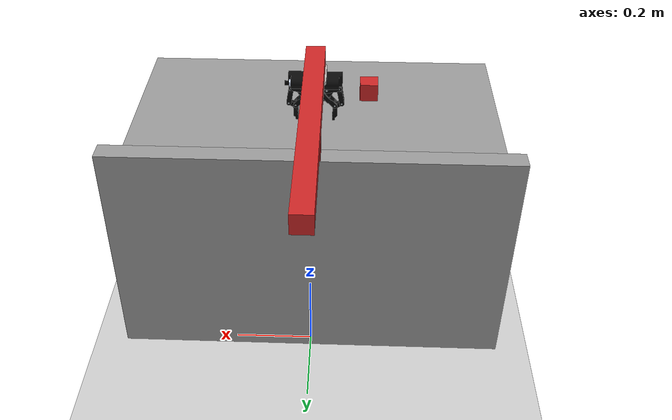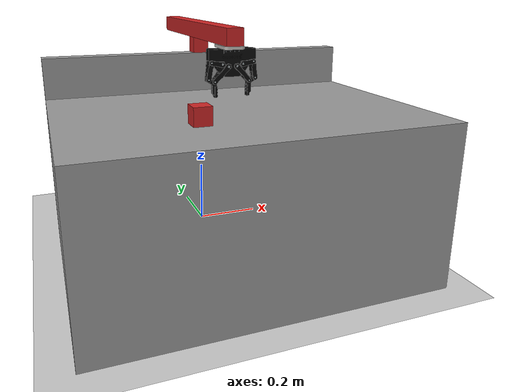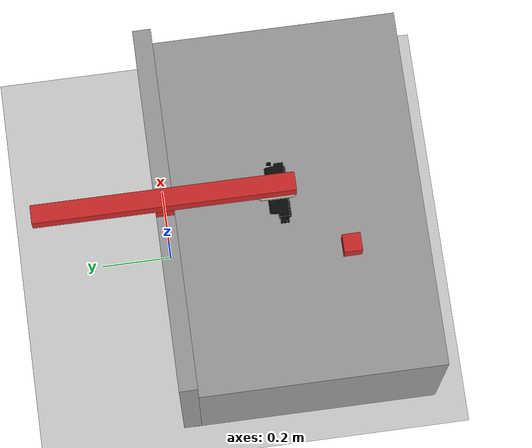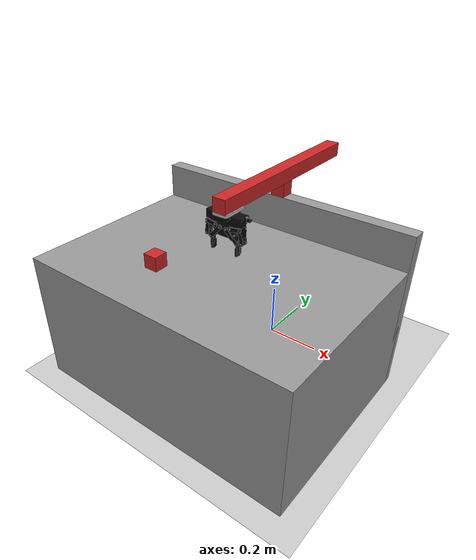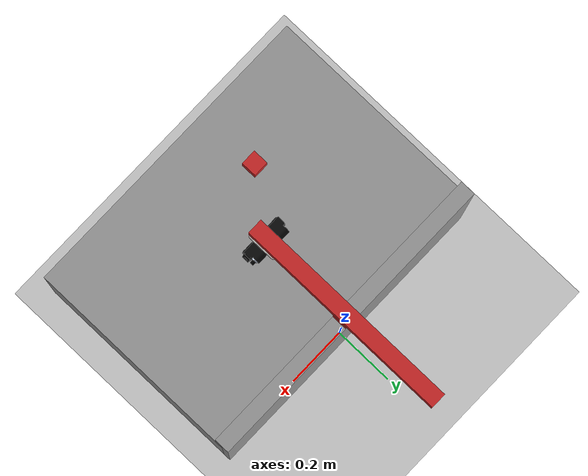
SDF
<sdf version="1.6">
 <world name="default">
  <light name="sun" type="directional">
   <pose>0 0 10 0 -0 0</pose>
   <diffuse>0.8 0.8 0.8 1</diffuse>
   <specular>0.2 0.2 0.2 1</specular>
   <attenuation>
    <range>1000</range>
    <constant>0.9</constant>
    <linear>0.01</linear>
    <quadratic>0.001</quadratic>
   </attenuation>
   <direction>-0.5 0.1 -0.9</direction>
  </light>
  <model name="ground_plane">
   <static>1</static>
   <link name="link">
    <collision name="collision">
     <geometry><plane><normal>0 0 1</normal><size>100 100</size></plane></geometry>
     <surface>
      <contact><collide_bitmask>65535</collide_bitmask></contact>
      <friction><ode><mu>100</mu><mu2>50</mu2></ode></friction>
     </surface>
    </collision>
    <visual name="visual">
     <cast_shadows>0</cast_shadows>
     <geometry><plane><normal>0 0 1</normal><size>100 100</size></plane></geometry>
     <material>
      <script><uri>file://media/materials/scripts/gazebo.material</uri><name>Gazebo/Grey</name></script>
     </material>
    </visual>
   </link>
  </model>
  <gravity>0 0 -9.8</gravity>
  <magnetic_field>6e-06 2.3e-05 -4.2e-05</magnetic_field>
  <atmosphere type="adiabatic"/>
  <physics name="default_physics" default="0" type="ode">
   <max_step_size>0.001</max_step_size>
   <real_time_factor>1</real_time_factor>
   <real_time_update_rate>1000</real_time_update_rate>
  </physics>
  <scene><ambient>0.4 0.4 0.4 1</ambient><background>0.7 0.7 0.7 1</background><shadows>1</shadows></scene>
  <audio><device>default</device></audio>
  <spherical_coordinates>
   <surface_model>EARTH_WGS84</surface_model>
   <latitude_deg>0</latitude_deg>
   <longitude_deg>0</longitude_deg>
   <elevation>0</elevation>
   <heading_deg>0</heading_deg>
  </spherical_coordinates>
  <model name="robotiq_c2_model">
   <link name="box">
    <pose>0 0 0.3 0 -0 0</pose>
    <inertial>
     <mass>1</mass>
     <inertia><ixx>1</ixx><ixy>0</ixy><ixz>0</ixz><iyy>1</iyy><iyz>0</iyz><izz>1</izz></inertia>
    </inertial>
    <collision name="box_collision">
     <geometry><box><size>1 0.05 0.6</size></box></geometry>
     <surface>
      <contact><ode><kp>1e+06</kp><kd>1</kd></ode></contact>
      <friction><ode><mu>50</mu><mu2>50</mu2></ode></friction>
     </surface>
    </collision>
    <visual name="box_visual">
     <geometry><box><size>1 0.05 0.6</size></box></geometry>
     <material>
      <script><name>Gazebo/Grey</name><uri>file://media/materials/scripts/gazebo.material</uri></script>
     </material>
    </visual>
   </link>
   <joint name="rh_world_joint" type="fixed"><child>box</child><parent>world</parent></joint>
   <link name="arm_base_link">
    <pose>0 0 0.625 0 -0 0</pose>
    <inertial>
     <mass>1</mass>
     <inertia><ixx>1</ixx><ixy>0</ixy><ixz>0</ixz><iyy>1</iyy><iyz>0</iyz><izz>1</izz></inertia>
    </inertial>
    <collision name="arm_base_link_collision">
     <geometry><box><size>0.05 0.05 0.05</size></box></geometry>
     <surface>
      <contact><ode><kp>1e+06</kp><kd>1</kd></ode></contact>
      <friction><ode><mu>50</mu><mu2>50</mu2></ode></friction>
     </surface>
    </collision>
    <visual name="arm_base_link_visual">
     <geometry><box><size>0.05 0.05 0.05</size></box></geometry>
     <material>
      <script><name>Gazebo/Red</name><uri>file://media/materials/scripts/gazebo.material</uri></script>
     </material>
    </visual>
   </link>
   <joint name="arm_base" type="prismatic">
    <child>arm_base_link</child>
    <parent>box</parent>
    <axis>
     <xyz>1 0 0</xyz>
     <limit><lower>-0.45</lower><upper>0.45</upper><effort>10000</effort><velocity>0.2</velocity></limit>
     <dynamics><spring_reference>0</spring_reference><spring_stiffness>0</spring_stiffness></dynamics>
     <use_parent_model_frame>1</use_parent_model_frame>
    </axis>
   </joint>
   <link name="joint_a1_link">
    <pose>0 0 0.675 0 -0 1.57</pose>
    <inertial>
     <pose>-0.201367 0 -0.0195 0 -0 0</pose>
     <mass>3</mass>
     <inertia>
      <ixx>3.00061</ixx>
      <ixy>0</ixy>
      <ixz>-0.0059074</ixz>
      <iyy>3.06144</iyy>
      <iyz>0</iyz>
      <izz>3.06083</izz>
     </inertia>
    </inertial>
    <collision name="joint_a1_link_collision">
     <geometry><box><size>0.7 0.05 0.05</size></box></geometry>
     <surface>
      <contact><ode><kp>1e+06</kp><kd>1</kd></ode></contact>
      <friction><ode><mu>50</mu><mu2>50</mu2></ode></friction>
     </surface>
    </collision>
    <collision name="joint_a1_link_fixed_joint_lump__robotiq_85_adapter_link_collision_1">
     <pose>-0.3 0 -0.025 1.57 9.6e-05 1.5708</pose>
     <geometry>
      <mesh>
       <scale>1 1 1</scale>
       <uri>/home/katerina/catkin_ws/src/robotiq/robotiq_2f_c2_gripper_visualization/meshes/robotiq_c2/collision/robotiq_85_gripper_adapter_plate.dae</uri>
      </mesh>
     </geometry>
    </collision>
    <collision name="joint_a1_link_fixed_joint_lump__robotiq_85_base_link_collision_2">
     <pose>-0.304093 0 -0.033503 3.1407 9.6e-05 1.5708</pose>
     <geometry>
      <mesh>
       <scale>1 1 1</scale>
       <uri>/home/katerina/catkin_ws/src/robotiq/robotiq_2f_c2_gripper_visualization/meshes/robotiq_c2/collision/robotiq_85_gripper_base.dae</uri>
      </mesh>
     </geometry>
    </collision>
    <visual name="joint_a1_link_visual">
     <geometry><box><size>0.7 0.05 0.05</size></box></geometry>
     <material>
      <script><name>Gazebo/Red</name><uri>file://media/materials/scripts/gazebo.material</uri></script>
     </material>
    </visual>
    <visual name="joint_a1_link_fixed_joint_lump__robotiq_85_adapter_link_visual_1">
     <pose>-0.3 0 -0.025 3.1407 9.6e-05 1.5708</pose>
     <geometry>
      <mesh>
       <scale>1 1 1</scale>
       <uri>/home/katerina/catkin_ws/src/robotiq/robotiq_2f_c2_gripper_visualization/meshes/robotiq_c2/visual/robotiq_85_gripper_adapter_plate.dae</uri>
      </mesh>
     </geometry>
    </visual>
    <visual name="joint_a1_link_fixed_joint_lump__robotiq_85_base_link_visual_2">
     <pose>-0.304093 0 -0.033503 -1.57169 9.6e-05 1.5708</pose>
     <geometry>
      <mesh>
       <scale>1 1 1</scale>
       <uri>/home/katerina/catkin_ws/src/robotiq/robotiq_2f_c2_gripper_visualization/meshes/robotiq_c2/visual/robotiq_85_gripper_base.dae</uri>
      </mesh>
     </geometry>
    </visual>
    <gravity>0</gravity>
   </link>
   <joint name="joint_a1" type="prismatic">
    <child>joint_a1_link</child>
    <parent>arm_base_link</parent>
    <axis>
     <xyz>0.000796 1 0</xyz>
     <limit><lower>-0.35</lower><upper>0.15</upper><effort>10000</effort><velocity>0.2</velocity></limit>
     <dynamics><spring_reference>0</spring_reference><spring_stiffness>0</spring_stiffness></dynamics>
     <use_parent_model_frame>1</use_parent_model_frame>
    </axis>
   </joint>
   <link name="robotiq_85_left_inner_knuckle_link">
    <pose>-0.012942 -0.304044 0.593067 -1.57089 0.000893 -1.57159</pose>
    <inertial>
     <mass>1</mass>
     <inertia><ixx>1</ixx><ixy>0</ixy><ixz>0</ixz><iyy>1</iyy><iyz>0</iyz><izz>1</izz></inertia>
    </inertial>
    <collision name="robotiq_85_left_inner_knuckle_link_collision">
     <pose>0 -0.04843 0.0127 3.14159 1.57079 -1.57079</pose>
     <geometry>
      <mesh>
       <scale>1 1 1</scale>
       <uri>/home/katerina/catkin_ws/src/robotiq/robotiq_2f_c2_gripper_visualization/meshes/robotiq_c2/collision/robotiq_85_gripper_joint_2_L.dae</uri>
      </mesh>
     </geometry>
    </collision>
    <visual name="robotiq_85_left_inner_knuckle_link_visual">
     <pose>0 -0.04843 0.0127 3.14159 1.57079 3.14159</pose>
     <geometry>
      <mesh>
       <scale>1 1 1</scale>
       <uri>/home/katerina/catkin_ws/src/robotiq/robotiq_2f_c2_gripper_visualization/meshes/robotiq_c2/visual/robotiq_85_gripper_joint_2_L.dae</uri>
      </mesh>
     </geometry>
    </visual>
   </link>
   <joint name="robotiq_85_left_inner_knuckle_joint" type="revolute">
    <child>robotiq_85_left_inner_knuckle_link</child>
    <parent>joint_a1_link</parent>
    <axis>
     <xyz>-0.000796 -0.999999 -0.000893</xyz>
     <limit><lower>0</lower><upper>1.5707</upper><effort>1000</effort><velocity>2</velocity></limit>
     <dynamics><spring_reference>0</spring_reference><spring_stiffness>0</spring_stiffness></dynamics>
     <use_parent_model_frame>1</use_parent_model_frame>
    </axis>
   </joint>
   <link name="robotiq_85_left_finger_tip_link">
    <pose>-0.051746 -0.303976 0.551111 -1.57089 0.000893 -1.57159</pose>
    <inertial>
     <mass>1</mass>
     <inertia><ixx>1</ixx><ixy>0</ixy><ixz>0</ixz><iyy>1</iyy><iyz>0</iyz><izz>1</izz></inertia>
    </inertial>
    <collision name="robotiq_85_left_finger_tip_link_collision">
     <pose>0 -0.090381 0.051505 3.14159 1.57079 -1.57079</pose>
     <geometry>
      <mesh>
       <scale>1 1 1</scale>
       <uri>/home/katerina/catkin_ws/src/robotiq/robotiq_2f_c2_gripper_visualization/meshes/robotiq_c2/collision/robotiq_85_gripper_joint_3_L.dae</uri>
      </mesh>
     </geometry>
    </collision>
    <visual name="robotiq_85_left_finger_tip_link_visual">
     <pose>0 -0.090381 0.051505 3.14159 1.57079 3.14159</pose>
     <geometry>
      <mesh>
       <scale>1 1 1</scale>
       <uri>/home/katerina/catkin_ws/src/robotiq/robotiq_2f_c2_gripper_visualization/meshes/robotiq_c2/visual/robotiq_85_gripper_joint_3_L.dae</uri>
      </mesh>
     </geometry>
    </visual>
    <sensor name="my_contact" type="contact">
     <plugin name="my_plugin" filename="libcontact.so"/>
     <contact><collision>robotiq_85_left_finger_tip_link_collision</collision></contact>
     <update_rate>5</update_rate>
    </sensor>
   </link>
   <joint name="robotiq_85_left_finger_tip_joint" type="revolute">
    <child>robotiq_85_left_finger_tip_link</child>
    <parent>robotiq_85_left_inner_knuckle_link</parent>
    <axis>
     <xyz>-0.000796 -0.999999 -0.000893</xyz>
     <limit><lower>0</lower><upper>1.5707</upper><effort>1000</effort><velocity>2</velocity></limit>
     <dynamics><spring_reference>0</spring_reference><spring_stiffness>0</spring_stiffness></dynamics>
     <use_parent_model_frame>1</use_parent_model_frame>
    </axis>
   </joint>
   <link name="robotiq_85_left_knuckle_link">
    <pose>-0.030842 -0.304035 0.599587 1.57089 0.000893 -1.57159</pose>
    <inertial>
     <pose>0 0.00254 0.01567 0 -0 0</pose>
     <mass>2</mass>
     <inertia>
      <ixx>2.0005</ixx>
      <ixy>0</ixy>
      <ixz>0</ixz>
      <iyy>2.00049</iyy>
      <iyz>-7.96036e-05</iyz>
      <izz>2.00001</izz>
     </inertia>
    </inertial>
    <collision name="robotiq_85_left_knuckle_link_collision">
     <pose>0 0.04191 -0.0306 -3.14159 -1.57079 -1.57079</pose>
     <geometry>
      <mesh>
       <scale>1 1 1</scale>
       <uri>/home/katerina/catkin_ws/src/robotiq/robotiq_2f_c2_gripper_visualization/meshes/robotiq_c2/collision/robotiq_85_gripper_joint_0_L.dae</uri>
      </mesh>
     </geometry>
    </collision>
    <collision name="robotiq_85_left_knuckle_link_fixed_joint_lump__robotiq_85_left_finger_link_collision_1">
     <pose>0 0.041904 -0.030603 3.14159 -1.57079 -1.5706</pose>
     <geometry>
      <mesh>
       <scale>1 1 1</scale>
       <uri>/home/katerina/catkin_ws/src/robotiq/robotiq_2f_c2_gripper_visualization/meshes/robotiq_c2/collision/robotiq_85_gripper_joint_1_L.dae</uri>
      </mesh>
     </geometry>
    </collision>
    <visual name="robotiq_85_left_knuckle_link_visual">
     <pose>0 0.04191 -0.0306 3.14159 -1.57079 -3e-06</pose>
     <geometry>
      <mesh>
       <scale>1 1 1</scale>
       <uri>/home/katerina/catkin_ws/src/robotiq/robotiq_2f_c2_gripper_visualization/meshes/robotiq_c2/visual/robotiq_85_gripper_joint_0_L.dae</uri>
      </mesh>
     </geometry>
    </visual>
    <visual name="robotiq_85_left_knuckle_link_fixed_joint_lump__robotiq_85_left_finger_link_visual_1">
     <pose>0 0.041904 -0.030603 -3.14159 -1.57079 9.7e-05</pose>
     <geometry>
      <mesh>
       <scale>1 1 1</scale>
       <uri>/home/katerina/catkin_ws/src/robotiq/robotiq_2f_c2_gripper_visualization/meshes/robotiq_c2/visual/robotiq_85_gripper_joint_1_L.dae</uri>
      </mesh>
     </geometry>
    </visual>
   </link>
   <joint name="robotiq_85_left_knuckle_joint" type="revolute">
    <child>robotiq_85_left_knuckle_link</child>
    <parent>joint_a1_link</parent>
    <axis>
     <xyz>-0.000796 -0.999999 -0.000893</xyz>
     <limit><lower>0</lower><upper>0.8575</upper><effort>1000</effort><velocity>2</velocity></limit>
     <dynamics><spring_reference>0</spring_reference><spring_stiffness>0</spring_stiffness></dynamics>
     <use_parent_model_frame>1</use_parent_model_frame>
    </axis>
   </joint>
   <link name="robotiq_85_right_inner_knuckle_link">
    <pose>0.012458 -0.304065 0.593067 -1.5707 -0.0007 1.57</pose>
    <inertial>
     <mass>1</mass>
     <inertia><ixx>1</ixx><ixy>0</ixy><ixz>0</ixz><iyy>1</iyy><iyz>0</iyz><izz>1</izz></inertia>
    </inertial>
    <collision name="robotiq_85_right_inner_knuckle_link_collision">
     <pose>0 -0.04843 0.0127 3.14159 -1.57079 1.57079</pose>
     <geometry>
      <mesh>
       <scale>1 1 1</scale>
       <uri>/home/katerina/catkin_ws/src/robotiq/robotiq_2f_c2_gripper_visualization/meshes/robotiq_c2/collision/robotiq_85_gripper_joint_2_R.dae</uri>
      </mesh>
     </geometry>
    </collision>
    <visual name="robotiq_85_right_inner_knuckle_link_visual">
     <pose>0 -0.04843 0.0127 3.14159 -1.57079 3.14159</pose>
     <geometry>
      <mesh>
       <scale>1 1 1</scale>
       <uri>/home/katerina/catkin_ws/src/robotiq/robotiq_2f_c2_gripper_visualization/meshes/robotiq_c2/visual/robotiq_85_gripper_joint_2_R.dae</uri>
      </mesh>
     </geometry>
    </visual>
   </link>
   <joint name="robotiq_85_right_inner_knuckle_joint" type="revolute">
    <child>robotiq_85_right_inner_knuckle_link</child>
    <parent>joint_a1_link</parent>
    <axis>
     <xyz>0.000796 0.999999 0.0007</xyz>
     <limit><lower>0</lower><upper>1.5707</upper><effort>1000</effort><velocity>2</velocity></limit>
     <dynamics><spring_reference>0</spring_reference><spring_stiffness>0</spring_stiffness></dynamics>
     <use_parent_model_frame>1</use_parent_model_frame>
    </axis>
   </joint>
   <link name="robotiq_85_right_finger_tip_link">
    <pose>0.051254 -0.304066 0.551103 -1.5707 -0.0007 1.57</pose>
    <inertial>
     <mass>1</mass>
     <inertia><ixx>1</ixx><ixy>0</ixy><ixz>0</ixz><iyy>1</iyy><iyz>0</iyz><izz>1</izz></inertia>
    </inertial>
    <collision name="robotiq_85_right_finger_tip_link_collision">
     <pose>0 -0.090381 0.051505 3.14159 -1.57079 1.57079</pose>
     <geometry>
      <mesh>
       <scale>1 1 1</scale>
       <uri>/home/katerina/catkin_ws/src/robotiq/robotiq_2f_c2_gripper_visualization/meshes/robotiq_c2/collision/robotiq_85_gripper_joint_3_R.dae</uri>
      </mesh>
     </geometry>
    </collision>
    <visual name="robotiq_85_right_finger_tip_link_visual">
     <pose>0 -0.090381 0.051505 3.14159 -1.57079 3.14159</pose>
     <geometry>
      <mesh>
       <scale>1 1 1</scale>
       <uri>/home/katerina/catkin_ws/src/robotiq/robotiq_2f_c2_gripper_visualization/meshes/robotiq_c2/visual/robotiq_85_gripper_joint_3_R.dae</uri>
      </mesh>
     </geometry>
    </visual>
    <sensor name="my_contact" type="contact">
     <plugin name="my_plugin" filename="libcontact.so"/>
     <contact><collision>robotiq_85_right_finger_tip_link_collision</collision></contact>
     <update_rate>5</update_rate>
    </sensor>
   </link>
   <joint name="robotiq_85_right_finger_tip_joint" type="revolute">
    <child>robotiq_85_right_finger_tip_link</child>
    <parent>robotiq_85_right_inner_knuckle_link</parent>
    <axis>
     <xyz>0.000796 0.999999 0.0007</xyz>
     <limit><lower>0</lower><upper>1.5707</upper><effort>1000</effort><velocity>2</velocity></limit>
     <dynamics><spring_reference>0</spring_reference><spring_stiffness>0</spring_stiffness></dynamics>
     <use_parent_model_frame>1</use_parent_model_frame>
    </axis>
   </joint>
   <link name="robotiq_85_right_knuckle_link">
    <pose>0.030358 -0.304084 0.599587 1.5707 -0.0007 1.57</pose>
    <inertial>
     <pose>0 0.00254 0.01567 0 -0 0</pose>
     <mass>2</mass>
     <inertia>
      <ixx>2.0005</ixx>
      <ixy>0</ixy>
      <ixz>0</ixz>
      <iyy>2.00049</iyy>
      <iyz>-7.96036e-05</iyz>
      <izz>2.00001</izz>
     </inertia>
    </inertial>
    <collision name="robotiq_85_right_knuckle_link_collision">
     <pose>0 0.04191 -0.0306 -3.14159 1.57079 1.57079</pose>
     <geometry>
      <mesh>
       <scale>1 1 1</scale>
       <uri>/home/katerina/catkin_ws/src/robotiq/robotiq_2f_c2_gripper_visualization/meshes/robotiq_c2/collision/robotiq_85_gripper_joint_0_R.dae</uri>
      </mesh>
     </geometry>
    </collision>
    <collision name="robotiq_85_right_knuckle_link_fixed_joint_lump__robotiq_85_right_finger_link_collision_1">
     <pose>0 0.041904 -0.030603 3.14159 1.57079 1.5706</pose>
     <geometry>
      <mesh>
       <scale>1 1 1</scale>
       <uri>/home/katerina/catkin_ws/src/robotiq/robotiq_2f_c2_gripper_visualization/meshes/robotiq_c2/collision/robotiq_85_gripper_joint_1_R.dae</uri>
      </mesh>
     </geometry>
    </collision>
    <visual name="robotiq_85_right_knuckle_link_visual">
     <pose>0 0.04191 -0.0306 3.14159 1.57079 3e-06</pose>
     <geometry>
      <mesh>
       <scale>1 1 1</scale>
       <uri>/home/katerina/catkin_ws/src/robotiq/robotiq_2f_c2_gripper_visualization/meshes/robotiq_c2/visual/robotiq_85_gripper_joint_0_R.dae</uri>
      </mesh>
     </geometry>
    </visual>
    <visual name="robotiq_85_right_knuckle_link_fixed_joint_lump__robotiq_85_right_finger_link_visual_1">
     <pose>0 0.041904 -0.030603 -3.14159 1.57079 -9.7e-05</pose>
     <geometry>
      <mesh>
       <scale>1 1 1</scale>
       <uri>/home/katerina/catkin_ws/src/robotiq/robotiq_2f_c2_gripper_visualization/meshes/robotiq_c2/visual/robotiq_85_gripper_joint_1_R.dae</uri>
      </mesh>
     </geometry>
    </visual>
   </link>
   <joint name="robotiq_85_right_knuckle_joint" type="revolute">
    <child>robotiq_85_right_knuckle_link</child>
    <parent>joint_a1_link</parent>
    <axis>
     <xyz>0.000796 0.999999 0.0007</xyz>
     <limit><lower>0</lower><upper>1.5707</upper><effort>1000</effort><velocity>2</velocity></limit>
     <dynamics><spring_reference>0</spring_reference><spring_stiffness>0</spring_stiffness></dynamics>
     <use_parent_model_frame>1</use_parent_model_frame>
    </axis>
   </joint>
   <link name="box_table">
    <pose>0 -0.35 0.225 0 -0 0</pose>
    <inertial>
     <mass>1</mass>
     <inertia><ixx>1</ixx><ixy>0</ixy><ixz>0</ixz><iyy>1</iyy><iyz>0</iyz><izz>1</izz></inertia>
    </inertial>
    <collision name="box_table_collision">
     <geometry><box><size>1 0.7 0.5</size></box></geometry>
     <surface>
      <contact><ode><kp>1e+06</kp><kd>1</kd></ode></contact>
      <friction><ode><mu>50</mu><mu2>50</mu2></ode></friction>
     </surface>
    </collision>
    <visual name="box_table_visual">
     <geometry><box><size>1 0.7 0.5</size></box></geometry>
     <material>
      <script><name>Gazebo/Grey</name><uri>file://media/materials/scripts/gazebo.material</uri></script>
     </material>
    </visual>
   </link>
   <joint name="table_box_joint" type="fixed"><child>box_table</child><parent>world</parent></joint>
   <plugin name="gazebo_ros_control" filename="libgazebo_ros_control.so">
    <robotNamespace>/robotiq_c2_model</robotNamespace>
   </plugin>
   <static>0</static>
   <plugin name="mimic_robotiq_85_4" filename="libroboticsgroup_upatras_gazebo_mimic_joint_plugin.so">
    <joint>robotiq_85_left_knuckle_joint</joint>
    <mimicJoint>robotiq_85_right_knuckle_joint</mimicJoint>
    <multiplier>1.0</multiplier>
    <robotNamespace>/</robotNamespace>
   </plugin>
   <plugin name="mimic_robotiq_85_2" filename="libroboticsgroup_upatras_gazebo_mimic_joint_plugin.so">
    <joint>robotiq_85_left_knuckle_joint</joint>
    <mimicJoint>robotiq_85_left_inner_knuckle_joint</mimicJoint>
    <offset>0.0</offset>
    <robotNamespace>/</robotNamespace>
   </plugin>
   <plugin name="mimic_robotiq_85_6" filename="libroboticsgroup_upatras_gazebo_mimic_joint_plugin.so">
    <joint>robotiq_85_left_knuckle_joint</joint>
    <mimicJoint>robotiq_85_right_inner_knuckle_joint</mimicJoint>
    <offset>0.0</offset>
    <robotNamespace>/</robotNamespace>
   </plugin>
   <plugin name="mimic_robotiq_85_3" filename="libroboticsgroup_upatras_gazebo_mimic_joint_plugin.so">
    <joint>robotiq_85_left_knuckle_joint</joint>
    <mimicJoint>robotiq_85_left_finger_tip_joint</mimicJoint>
    <multiplier>-1.0</multiplier>
    <robotNamespace>/</robotNamespace>
   </plugin>
   <plugin name="mimic_robotiq_85_5" filename="libroboticsgroup_upatras_gazebo_mimic_joint_plugin.so">
    <joint>robotiq_85_left_knuckle_joint</joint>
    <mimicJoint>robotiq_85_right_finger_tip_joint</mimicJoint>
    <multiplier>-1.0</multiplier>
    <robotNamespace>/</robotNamespace>
   </plugin>
  </model>
  <model name="unit_box">
   <link name="link">
    <inertial>
     <mass>1</mass>
     <inertia>
      <ixx>0.166667</ixx>
      <ixy>0</ixy>
      <ixz>0</ixz>
      <iyy>0.166667</iyy>
      <iyz>0</iyz>
      <izz>0.166667</izz>
     </inertia>
    </inertial>
    <visual name="visual">
     <geometry><box><size>0.05 0.05 0.05</size></box></geometry>
     <material>
      <script><name>Gazebo/Red</name><uri>file://media/materials/scripts/gazebo.material</uri></script>
      <shader type="vertex"><normal_map>__default__</normal_map></shader>
      <ambient>0.3 0.3 0.3 1</ambient>
      <diffuse>0.7 0.7 0.7 1</diffuse>
      <specular>0.01 0.01 0.01 1</specular>
      <emissive>0 0 0 1</emissive>
     </material>
    </visual>
    <collision name="table_goal_collision">
     <geometry><box><size>0.046401 0.051445 0.051847</size></box></geometry>
     <surface>
      <friction>
       <ode><mu>1</mu><mu2>1</mu2><fdir1>0 0 0</fdir1><slip1>0</slip1><slip2>0</slip2></ode>
       <torsional>
        <coefficient>1</coefficient>
        <patch_radius>0</patch_radius>
        <surface_radius>0</surface_radius>
        <use_patch_radius>1</use_patch_radius>
        <ode><slip>0</slip></ode>
       </torsional>
      </friction>
      <bounce><restitution_coefficient>0</restitution_coefficient><threshold>1e+06</threshold></bounce>
      <contact>
       <collide_without_contact>0</collide_without_contact>
       <collide_without_contact_bitmask>1</collide_without_contact_bitmask>
       <collide_bitmask>1</collide_bitmask>
       <ode>
        <soft_cfm>0</soft_cfm>
        <soft_erp>0.2</soft_erp>
        <kp>1e+13</kp>
        <kd>1</kd>
        <max_vel>0.01</max_vel>
        <min_depth>0</min_depth>
       </ode>
       <bullet>
        <split_impulse>1</split_impulse>
        <split_impulse_penetration_threshold>-0.01</split_impulse_penetration_threshold>
        <soft_cfm>0</soft_cfm>
        <soft_erp>0.2</soft_erp>
        <kp>1e+13</kp>
        <kd>1</kd>
       </bullet>
      </contact>
     </surface>
    </collision>
    <sensor name="my_contact" type="contact">
     <plugin name="my_plugin" filename="libcontact.so"/>
     <contact><collision>table_goal_collision</collision></contact>
     <update_rate>5</update_rate>
    </sensor>
   </link>
   <static>0</static>
   <pose>-0.144819 -0.488213 0.500921 0 -0 0.006822</pose>
  </model>
 </world>
</sdf>
